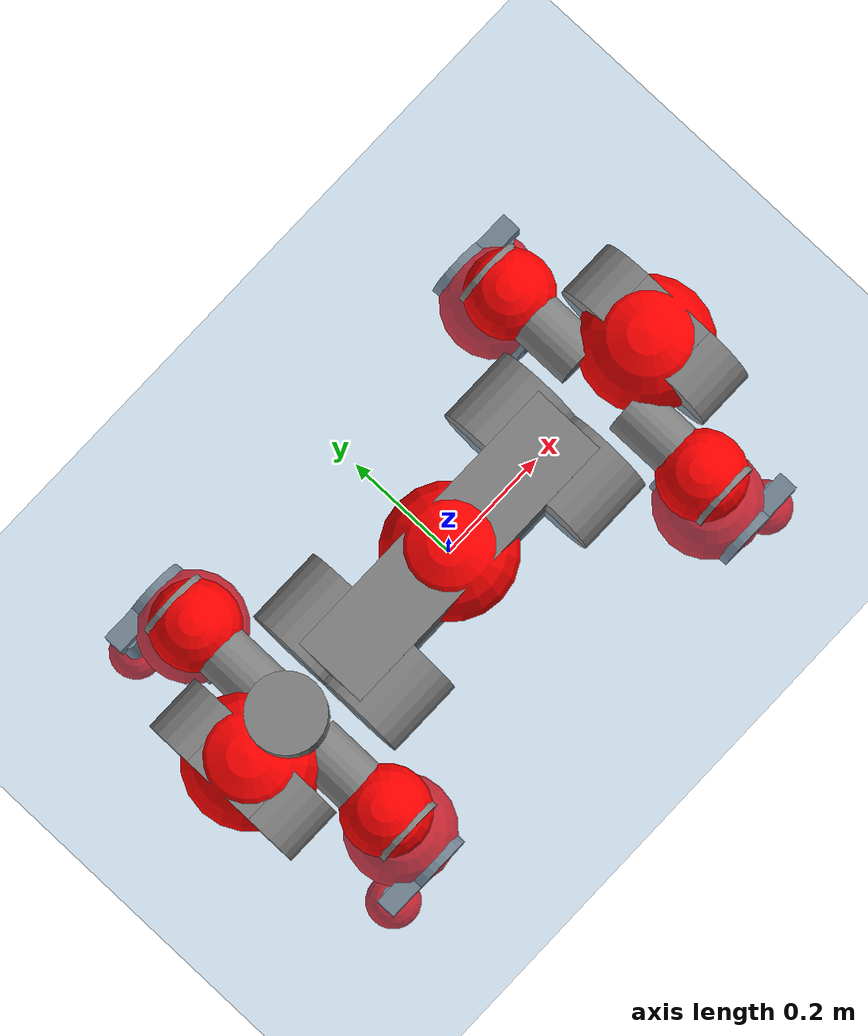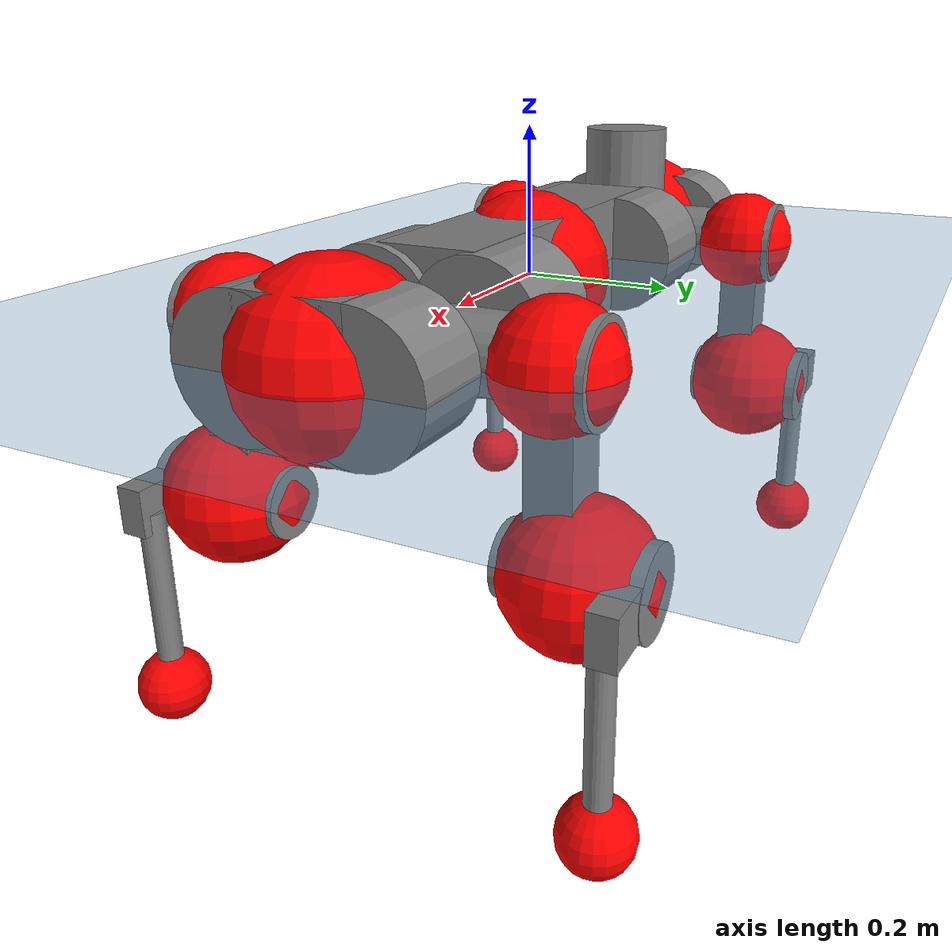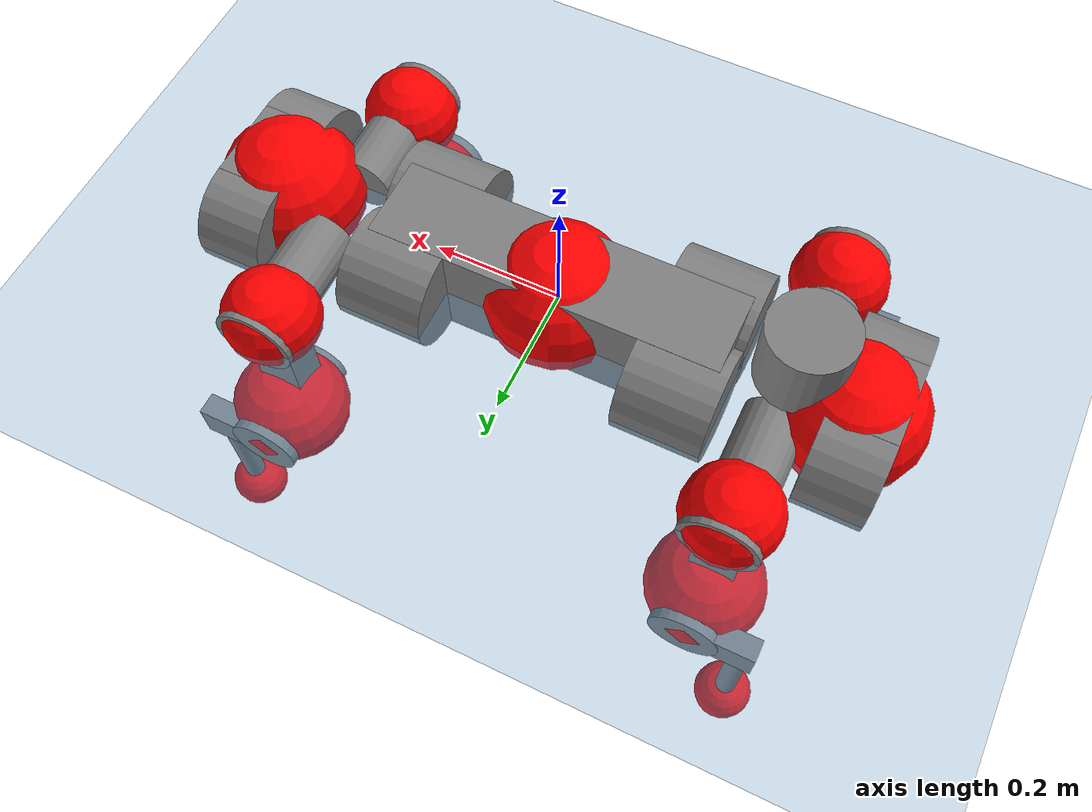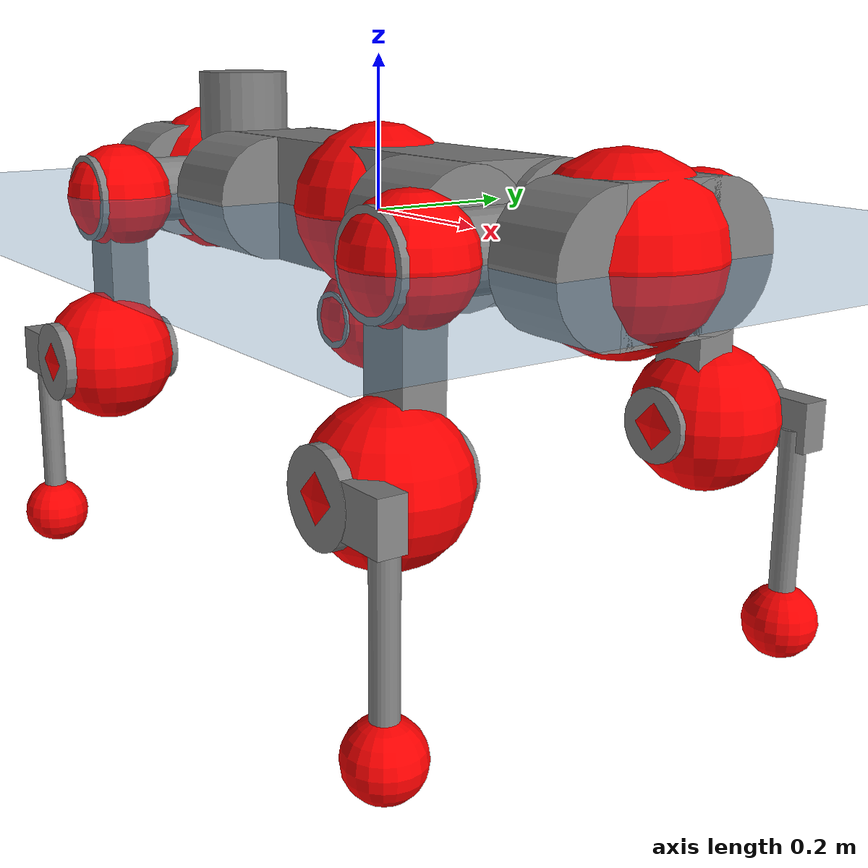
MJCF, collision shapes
<mujoco model="anymal_c">
  <compiler angle="radian" assetdir="assets" balanceinertia="true" inertiafromgeom="false"/>

  <option timestep="0.005" density="1.2" viscosity="2e-05"/>

  <size nkey="1"/>

  <visual>
    <quality shadowsize="8192"/>
    <map shadowclip="0.5"/>
  </visual>

  <default>
    <default class="/">
      <material specular="0" shininess="0.25"/>
      <geom contype="0" conaffinity="0" group="1" solref="-1000 -80"/>
      <site size="0.01 0.005 0.005" group="5"/>
      <general forcelimited="true" forcerange="-80 80" biastype="affine" gainprm="80" biasprm="0 -80 -2"/>
      <default class="anymal_c">
        <joint armature="0.01" damping="0.01" frictionloss="0.1"/>
        <default class="visual">
          <geom type="mesh" group="2"/>
          <default class="visual_zflip"/>
        </default>
        <default class="collision">
          <geom type="cylinder" group="3"/>
          <default class="foot">
            <geom size="0.03 0 0" type="sphere" condim="6" priority="1" friction="0.8 0.02 0.01" solimp="0.015 1 0.03"/>
          </default>
        </default>
      </default>
      <default class="reward_collision_sphere">
        <geom group="5" rgba="1 0 0 1"/>
      </default>
    </default>
  </default>

  <asset>
    <texture type="skybox" colorspace="auto" name="//unnamed_texture_0" builtin="gradient" rgb1="0.95 0.95 0.95" rgb2="0.95 0.95 0.95" width="100" height="600"/>
    <texture type="2d" colorspace="auto" name="texplane" builtin="checker" rgb1="0.345 0.575 0.748" rgb2="0.345 0.575 0.748" markrgb="1 1 1" width="512" height="512"/>
    <texture type="2d" colorspace="linear" name="base" file="base.png"/>
    <texture type="2d" colorspace="linear" name="top_shell" file="top_shell.png"/>
    <texture type="2d" colorspace="linear" name="bottom_shell" file="bottom_shell.png"/>
    <texture type="2d" colorspace="linear" name="remote" file="remote.png"/>
    <texture type="2d" colorspace="linear" name="hatch" file="hatch.png"/>
    <texture type="2d" colorspace="linear" name="handle" file="handle.png"/>
    <texture type="2d" colorspace="linear" name="face" file="face.png"/>
    <texture type="2d" colorspace="linear" name="battery" file="battery.png"/>
    <texture type="2d" colorspace="linear" name="lidar_cage" file="lidar_cage.png"/>
    <texture type="2d" colorspace="linear" name="depth_camera" file="depth_camera.png"/>
    <texture type="2d" colorspace="linear" name="wide_angle_camera" file="wide_angle_camera.png"/>
    <texture type="2d" colorspace="linear" name="lidar" file="lidar.png"/>
    <texture type="2d" colorspace="linear" name="drive" file="drive.png"/>
    <texture type="2d" colorspace="linear" name="hip_l" file="hip_l.png"/>
    <texture type="2d" colorspace="linear" name="shank_l" file="shank_l.png"/>
    <texture type="2d" colorspace="linear" name="foot" file="foot.png"/>
    <texture type="2d" colorspace="linear" name="thigh" file="thigh.png"/>
    <texture type="2d" colorspace="linear" name="shank_r" file="shank_r.png"/>
    <texture type="2d" colorspace="linear" name="hip_r" file="hip_r.png"/>
    <material name="MatPlane" class="/" texture="texplane" texuniform="true" texrepeat="2 2" specular="0.9" shininess="0.5"/>
    <material name="black_plastic" class="/" rgba="0.007 0.007 0.007 1"/>
    <material name="green" class="/" rgba="0.052 0.178 0.033 1"/>
    <material name="red" class="/" rgba="0.178 0.006 0.005 1"/>
    <material name="yellow" class="/" rgba="0.178 0.119 0.006 1"/>
    <material name="lwl" class="/" rgba="0.8 0.8 0.8 1"/>
    <material name="base" class="/" texture="base"/>
    <material name="top_shell" class="/" texture="top_shell"/>
    <material name="bottom_shell" class="/" texture="bottom_shell"/>
    <material name="hip_l" class="/" texture="hip_l"/>
    <material name="thigh" class="/" texture="thigh"/>
    <material name="shank_l" class="/" texture="shank_l"/>
    <material name="foot" class="/" texture="foot"/>
    <material name="hip_r" class="/" texture="hip_r"/>
    <material name="shank" class="/" texture="shank_r"/>
    <material name="hatch" class="/" texture="hatch"/>
    <material name="remote" class="/" texture="remote"/>
    <material name="handle" class="/" texture="handle"/>
    <material name="face" class="/" texture="face"/>
    <material name="depth_camera" class="/" texture="depth_camera"/>
    <material name="wide_angle_camera" class="/" texture="wide_angle_camera"/>
    <material name="battery" class="/" texture="battery"/>
    <material name="lidar_cage" class="/" texture="lidar_cage"/>
    <material name="lidar" class="/" texture="lidar"/>
    <material name="drive" class="/" texture="drive"/>
    <mesh name="base_0" class="/" file="base_0.obj"/>
    <mesh name="base_1" class="/" file="base_1.obj"/>
    <mesh name="base_2" class="/" file="base_2.obj"/>
    <mesh name="base_3" class="/" file="base_3.obj"/>
    <mesh name="base_4" class="/" file="base_4.obj"/>
    <mesh name="base_5" class="/" file="base_5.obj"/>
    <mesh name="top_shell" class="/" file="top_shell.obj"/>
    <mesh name="bottom_shell" class="/" file="bottom_shell.obj"/>
    <mesh name="remote" class="/" file="remote.obj"/>
    <mesh name="handle" class="/" file="handle.obj"/>
    <mesh name="face" class="/" file="face.obj"/>
    <mesh name="wide_angle_camera" class="/" file="wide_angle_camera.obj"/>
    <mesh name="depth_camera" class="/" file="depth_camera.obj"/>
    <mesh name="battery" class="/" file="battery.obj"/>
    <mesh name="lidar_cage" class="/" file="lidar_cage.obj"/>
    <mesh name="lidar" class="/" file="lidar.obj"/>
    <mesh name="drive" class="/" file="drive.obj"/>
    <mesh name="hip_l" class="/" file="hip_l.obj"/>
    <mesh name="thigh" class="/" file="thigh.obj"/>
    <mesh name="shank_l" class="/" file="shank_l.obj"/>
    <mesh name="foot" class="/" file="foot.obj"/>
    <mesh name="hip_r" class="/" file="hip_r.obj"/>
    <mesh name="hatch" class="/" file="hatch.obj"/>
    <mesh name="shank_r" class="/" file="shank_r.obj"/>
  </asset>

  <worldbody>
    <geom name="floor" class="/" size="100 100 0.125" type="plane" group="0" material="MatPlane"/>
    <light name="toplight_shadow" class="/" pos="0 0 5" dir="0.0990148 0.0990148 -0.990148" type="directional" ambient="0.04 0.04 0.04" diffuse="0.55 0.55 0.55" specular="0.12 0.12 0.12"/>
    <light name="toplight_fill" class="/" pos="0 0 5" dir="0.0990148 0.0990148 -0.990148" type="directional" castshadow="false" ambient="0.04 0.04 0.04" diffuse="0.3 0.3 0.3" specular="0.08 0.08 0.08"/>
    <body name="trunk" childclass="anymal_c" pos="0.00155146 -0.000798595 0.00312074" quat="0.999999 -0.000883217 0.000275533 -0.00063488">
      <inertial pos="0.0025689 -0.000825723 0.0342115" quat="0.504497 0.495128 0.49521 0.505072" mass="14.9844" diaginertia="0.612453 0.545522 0.0750737"/>
      <joint name="//unnamed_joint_0" type="free" armature="0" damping="0" frictionloss="0"/>
      <geom name="//unnamed_geom_1" class="visual" material="green" mesh="base_0"/>
      <geom name="//unnamed_geom_2" class="visual" material="yellow" mesh="base_1"/>
      <geom name="//unnamed_geom_3" class="visual" material="red" mesh="base_2"/>
      <geom name="//unnamed_geom_4" class="visual" material="black_plastic" mesh="base_3"/>
      <geom name="//unnamed_geom_5" class="visual" material="lwl" mesh="base_4"/>
      <geom name="//unnamed_geom_6" class="visual" material="base" mesh="base_5"/>
      <geom name="trunk_1" class="collision" size="0.271668 0.065575 0.0843107" type="box"/>
      <geom name="trunk_2" class="collision" size="0.0843107 0.067917" pos="0.21856 0.0692235 0" quat="0.707107 0 0.707107 0"/>
      <geom name="trunk_3" class="collision" size="0.0843107 0.067917" pos="-0.21856 0.0692235 0" quat="0.707107 0 0.707107 0"/>
      <geom name="trunk_4" class="collision" size="0.0843107 0.067917" pos="0.21856 -0.0692235 0" quat="0.707107 0 0.707107 0"/>
      <geom name="trunk_5" class="collision" size="0.0843107 0.067917" pos="-0.21856 -0.0692235 0" quat="0.707107 0 0.707107 0"/>
      <geom name="//unnamed_geom_12" class="visual" material="top_shell" mesh="top_shell"/>
      <geom name="//unnamed_geom_13" class="visual" material="bottom_shell" mesh="bottom_shell"/>
      <geom name="//unnamed_geom_14" class="visual" material="remote" mesh="remote"/>
      <geom name="//unnamed_geom_15" class="visual" material="handle" mesh="handle"/>
      <geom name="//unnamed_geom_16" class="visual" pos="0.41652 0 0" quat="1 0 0 0" material="face" mesh="face"/>
      <geom name="trunk_6" class="collision" size="0.0515232 0.065575 0.0843107" pos="0.471788 0 0" type="box"/>
      <geom name="//unnamed_geom_18" class="collision" size="0.0843107 0.0515232" pos="0.471788 0.0692235 0" quat="0.707107 0 0.707107 0"/>
      <geom name="//unnamed_geom_19" class="collision" size="0.0843107 0.0515232" pos="0.471788 -0.0692235 0" quat="0.707107 0 0.707107 0"/>
      <geom name="//unnamed_geom_20" class="visual" pos="0.463892 0 -0.022413" quat="0.965926 0 0.258819 0" material="depth_camera" mesh="depth_camera"/>
      <geom name="//unnamed_geom_21" class="visual" pos="0.5155 0 0.0122242" material="wide_angle_camera" mesh="wide_angle_camera"/>
      <geom name="//unnamed_geom_22" class="visual_zflip" pos="-0.41652 0 0" quat="0 0 0 1" material="face" mesh="face"/>
      <geom name="trunk_7" class="collision" size="0.0515232 0.065575 0.0843107" pos="-0.471788 0 0" quat="0 0 0 1" type="box"/>
      <geom name="//unnamed_geom_24" class="collision" size="0.0843107 0.0515232" pos="-0.471788 -0.0692235 0" quat="0 -0.707107 0 0.707107"/>
      <geom name="//unnamed_geom_25" class="collision" size="0.0843107 0.0515232" pos="-0.471788 0.0692235 0" quat="0 -0.707107 0 0.707107"/>
      <geom name="//unnamed_geom_26" class="visual" pos="-0.463892 0 -0.022413" quat="0 -0.258819 0 0.965926" material="depth_camera" mesh="depth_camera"/>
      <geom name="//unnamed_geom_27" class="visual_zflip" pos="-0.5155 0 0.0122242" quat="0 0 0 1" material="wide_angle_camera" mesh="wide_angle_camera"/>
      <geom name="//unnamed_geom_28" class="visual" material="battery" mesh="battery"/>
      <geom name="//unnamed_geom_29" class="visual" pos="0 0.0753945 0.0251526" quat="0.683013 -0.183013 0.183013 0.683013" material="depth_camera" mesh="depth_camera"/>
      <geom name="//unnamed_geom_30" class="visual" pos="0 -0.0753945 0.0251526" quat="0.683013 0.183013 0.183013 -0.683013" material="depth_camera" mesh="depth_camera"/>
      <geom name="//unnamed_geom_31" class="visual" pos="-0.365774 0 0.0600184" quat="1 0 0 0" material="lidar_cage" mesh="lidar_cage"/>
      <geom name="trunk_8" class="collision" size="0.065575 0.0562071" pos="-0.365774 0 0.109013"/>
      <geom name="//unnamed_geom_33" class="visual" pos="-0.365774 -6.27312e-06 0.116117" quat="0.707107 0 0 -0.707107" material="lidar" mesh="lidar"/>
      <geom name="//unnamed_geom_34" class="visual" pos="0.301362 0.102785 2.9727e-09" quat="0.258819 0.965926 0 0" material="drive" mesh="drive"/>
      <geom name="//unnamed_geom_35" class="visual" pos="0.301362 -0.102785 -2.9727e-09" quat="0.258819 -0.965926 0 0" material="drive" mesh="drive"/>
      <geom name="//unnamed_geom_36" class="visual" pos="-0.301362 0.102785 -2.9727e-09" quat="0 0 0.965926 -0.258819" material="drive" mesh="drive"/>
      <geom name="//unnamed_geom_37" class="visual" pos="-0.301362 -0.102785 2.9727e-09" quat="0 0 -0.965926 -0.258819" material="drive" mesh="drive"/>
      <geom name="//unnamed_geom_38" class="visual" pos="0.116565 0 0.0596101" quat="1 0 0 0" material="hatch" mesh="hatch"/>
      <geom name="//unnamed_geom_39" class="reward_collision_sphere" size="0.112414"/>
      <geom name="//unnamed_geom_40" class="reward_collision_sphere" size="0.112414" pos="0.452193 0 0"/>
      <geom name="//unnamed_geom_41" class="reward_collision_sphere" size="0.112414" pos="-0.452193 0 0"/>
      <site name="imu" pos="0.261329 0.0153607 0.0392583" size="0.00936786"/>
      <camera name="track" pos="0 -1.97781 0" quat="0.707107 0.707107 0 0" mode="trackcom"/>
      <camera name="ego_camera" pos="0.452193 0 -0.0326631" quat="-0.5 -0.5 0.5 0.5"/>
      <body name="LF_HIP" pos="0.301808 0.106258 0.00124853" quat="0.258794 0.965932 -0.000168324 -0.000192117">
        <inertial pos="0.0587503 -0.0158542 -0.00383394" quat="-0.133471 0.702938 -0.126713 0.687028" mass="2.23217" diaginertia="0.00589922 0.00441303 0.00117274"/>
        <joint name="LF_HAA" pos="0 0 0" axis="0.999977 0.00647109 0.00210222" range="-0.701085 0.524746" armature="0.00937546" damping="0.00620727" frictionloss="0.102012"/>
        <geom name="//unnamed_geom_42" class="visual" pos="0 0.00017487 -2.87223e-05" quat="0.258819 -0.965926 0 0" material="hip_l" mesh="hip_l"/>
        <geom name="//unnamed_geom_43" class="visual" pos="0.0601919 -0.0726639 -0.0406779" quat="0.183013 -0.683013 0.683013 0.183013" material="drive" mesh="drive"/>
        <geom name="//unnamed_geom_44" class="collision" size="0.0468393 0.065575" pos="0.0601919 -0.0118271 -0.00563847" quat="-0.353553 -0.612372 0.612372 -0.353553"/>
        <body name="LF_THIGH" pos="0.0608941 -0.071025 -0.0362609" quat="0.18317 -0.683134 0.68282 0.183123">
          <inertial pos="0.031327 -0.000889451 -0.200641" quat="0.991806 -0.0111016 -0.0843729 0.0952784" mass="2.64601" diaginertia="0.0324335 0.0287465 0.00155557"/>
          <joint name="LF_HFE" pos="0 0 0" axis="0.999998 -0.00152121 -0.000898561" range="-3.17582 3.14036" armature="0.00927159" damping="0.00984274" frictionloss="0.0931171"/>
          <geom name="//unnamed_geom_45" class="visual" pos="0.000317686 5.00599e-07 0" quat="0.707107 0 0 -0.707107" material="thigh" mesh="thigh"/>
          <geom name="//unnamed_geom_46" class="collision" size="0.0608911 0.0374714" pos="0.040195 0 0" quat="0.5 0.5 -0.5 -0.5"/>
          <geom name="//unnamed_geom_47" class="collision" size="0.0351295 0.0281036 0.132381" pos="0.0301462 0 -0.115394" quat="0.707107 0 0 -0.707107" type="box"/>
          <geom name="//unnamed_geom_48" class="visual" pos="0.100789 0 -0.232724" quat="1 0 0 0" material="drive" mesh="drive"/>
          <geom name="//unnamed_geom_49" class="collision" size="0.0468393 0.065575" pos="0.0304477 0 -0.232724" quat="0.707107 0 0.707107 0"/>
          <geom name="//unnamed_geom_50" class="reward_collision_sphere" size="0.0749429" pos="0.0251218 0 0"/>
          <body name="LF_SHANK" pos="0.104059 -0.00155254 -0.232733" quat="1 -5.51602e-05 1.55214e-06 7.05296e-05">
            <inertial pos="0.00964665 -0.0580345 -0.0659427" quat="0.992934 -0.115904 -0.00105489 -0.0254421" mass="0.48002" diaginertia="0.0107158 0.00888816 0.000412083"/>
            <joint name="LF_KFE" pos="0 0 0" axis="1 0.000329362 -0.000881474" range="-3.06155 3.16836" armature="0.00831403" damping="0" frictionloss="0.0774325"/>
            <geom name="//unnamed_geom_51" class="visual" pos="0.000103591 0.00055235 0" quat="0.707107 0 0 -0.707107" material="shank_l" mesh="shank_l"/>
            <geom name="LF_kfe_act" class="collision" size="0.0562071 0.0187357" pos="0.0200975 0 0" quat="0.5 0.5 -0.5 -0.5"/>
            <geom name="//unnamed_geom_53" class="collision" size="0.0538642 0.0316165 0.0177989" pos="0.0200975 -0.0568611 0" quat="0.5 0.5 -0.5 -0.5" type="box"/>
            <geom name="//unnamed_geom_54" class="visual" pos="0.0131136 -0.0867963 -0.275979" quat="0.382683 0 0 -0.92388" material="foot" mesh="foot"/>
            <geom name="LF_calf" class="collision" size="0.0163938 0.132323" pos="0.0131136 -0.0869743 -0.137989" quat="0.707107 0 0 -0.707107"/>
            <geom name="LF_foot" class="foot" size="0.0308024" pos="0.0131136 -0.0869743 -0.257606" quat="0.707107 0 0 -0.707107"/>
            <geom name="//unnamed_geom_57" class="reward_collision_sphere" size="0.0936786" pos="-0.0502437 0 0"/>
            <geom name="//unnamed_geom_58" class="reward_collision_sphere" size="0.0468393" pos="0.0131136 -0.0869743 -0.257606"/>
            <site name="LF_foot" class="foot" pos="0.0131136 -0.0869743 -0.257606" quat="0.707107 0 0 -0.707107" size="0.00936786"/>
          </body>
        </body>
      </body>
      <body name="RF_HIP" pos="0.300095 -0.102471 0.00229006" quat="0.257989 -0.966146 -0.00155025 -0.000691201">
        <inertial pos="0.0545635 0.0153336 -0.00568649" quat="0.131471 0.66887 0.122539 0.721327" mass="2.11867" diaginertia="0.00595979 0.00453774 0.00118026"/>
        <joint name="RF_HAA" pos="0 0 0" axis="0.999978 -0.00601083 0.00297319" stiffness="4.57838e-06" range="-0.430884 0.688239" armature="0.0104867" damping="0.00248451" frictionloss="0.0980866"/>
        <geom name="//unnamed_geom_59" class="visual" pos="0 -0.000174869 -2.87223e-05" quat="0.258819 0.965926 0 0" material="hip_r" mesh="hip_r"/>
        <geom name="//unnamed_geom_60" class="visual" pos="0.0601919 0.0726639 -0.0406779" quat="0.183013 0.683013 0.683013 -0.183013" material="drive" mesh="drive"/>
        <geom name="//unnamed_geom_61" class="collision" size="0.0468393 0.065575" pos="0.0601919 0.0118271 -0.00563847" quat="-0.353553 0.612372 0.612372 0.353553"/>
        <body name="RF_THIGH" pos="0.0597681 0.0703106 -0.0364654" quat="0.182469 0.683004 0.683047 -0.18346">
          <inertial pos="0.0289629 -0.0010049 -0.202627" quat="0.991562 -0.0139638 -0.0894282 0.092799" mass="2.50955" diaginertia="0.0307876 0.0283739 0.00155645"/>
          <joint name="RF_HFE" pos="0 0 0" axis="0.999969 -0.00630475 -0.00477009" range="-3.13574 3.10899" armature="0.00820728" damping="0.0295232" frictionloss="0.0955275"/>
          <geom name="//unnamed_geom_62" class="visual" pos="0.000317686 5.00599e-07 0" quat="0.707107 0 0 -0.707107" material="thigh" mesh="thigh"/>
          <geom name="//unnamed_geom_63" class="collision" size="0.0608911 0.0374714" pos="0.040195 0 0" quat="0.5 0.5 0.5 0.5"/>
          <geom name="//unnamed_geom_64" class="collision" size="0.0351295 0.0281036 0.132381" pos="0.0301462 0 -0.115394" quat="0.707107 0 0 0.707107" type="box"/>
          <geom name="//unnamed_geom_65" class="visual" pos="0.100789 0 -0.232724" quat="1 0 0 0" material="drive" mesh="drive"/>
          <geom name="//unnamed_geom_66" class="collision" size="0.0468393 0.065575" pos="0.0304477 0 -0.232724" quat="0.707107 0 0.707107 0"/>
          <geom name="//unnamed_geom_67" class="reward_collision_sphere" size="0.0749429" pos="0.0251218 0 0"/>
          <body name="RF_SHANK" pos="0.103145 0.00194152 -0.232038" quat="0.999999 0.00116832 -0.000165357 -0.000213934">
            <inertial pos="0.00328801 0.06256 -0.0661212" quat="0.99183 0.121135 -0.0146274 0.0372259" mass="0.48395" diaginertia="0.0106352 0.00880231 0.000411395"/>
            <joint name="RF_KFE" pos="0 0 0" axis="0.999894 -0.00825246 0.0119788" range="-3.12638 3.10497" armature="0.00981214" damping="0.00421763" frictionloss="0.0842594"/>
            <geom name="//unnamed_geom_68" class="visual" pos="0.00010359 -0.000552349 0" quat="0.707107 0 0 0.707107" material="shank" mesh="shank_r"/>
            <geom name="RF_kfe_act" class="collision" size="0.0562071 0.0187357" pos="0.0200975 0 0" quat="0.5 0.5 0.5 0.5"/>
            <geom name="//unnamed_geom_70" class="collision" size="0.0538642 0.0316165 0.0177989" pos="0.0200975 0.0568611 0" quat="0.5 0.5 0.5 0.5" type="box"/>
            <geom name="//unnamed_geom_71" class="visual" pos="0.0131136 0.0867963 -0.275979" quat="0.382683 0 0 0.92388" material="foot" mesh="foot"/>
            <geom name="RF_calf" class="collision" size="0.0163938 0.132323" pos="0.0131136 0.0869743 -0.137989" quat="0.707107 0 0 0.707107"/>
            <geom name="RF_foot" class="foot" size="0.0299411" pos="0.0131136 0.0869743 -0.257606" quat="0.707107 0 0 0.707107"/>
            <geom name="//unnamed_geom_74" class="reward_collision_sphere" size="0.0936786" pos="-0.0502437 0 0"/>
            <geom name="//unnamed_geom_75" class="reward_collision_sphere" size="0.0468393" pos="0.0131136 0.0869743 -0.257606"/>
            <site name="RF_foot" class="foot" pos="0.0131136 0.0869743 -0.257606" quat="0.707107 0 0 0.707107" size="0.00936786"/>
          </body>
        </body>
      </body>
      <body name="LH_HIP" pos="-0.299967 0.102417 0.000629869" quat="-0.00112048 0.000868884 0.966144 -0.257999">
        <inertial pos="0.0544366 0.0168703 -0.00360189" quat="0.1407 0.677233 0.117355 0.712591" mass="2.20853" diaginertia="0.005743 0.00470812 0.00117564"/>
        <joint name="LH_HAA" pos="0 0 0" axis="0.999981 0.00574488 -0.00210209" range="-0.464007 0.679532" armature="0.0088887" damping="0.00691642" frictionloss="0.0952695"/>
        <geom name="//unnamed_geom_76" class="visual" pos="0 -0.000174869 -2.87223e-05" quat="-0.258819 -0.965926 0 0" material="hip_r" mesh="hip_r"/>
        <geom name="//unnamed_geom_77" class="visual" pos="0.0601919 0.0726639 -0.0406779" quat="0.183013 0.683013 0.683013 -0.183013" material="drive" mesh="drive"/>
        <geom name="//unnamed_geom_78" class="collision" size="0.0468393 0.065575" pos="0.0601919 0.0118271 -0.00563847" quat="-0.353553 0.612372 0.612372 0.353553"/>
        <body name="LH_THIGH" pos="0.0588675 0.0727615 -0.0391258" quat="0.183098 0.682923 0.683081 -0.183008">
          <inertial pos="0.0271923 -0.000232808 -0.196896" quat="0.992762 -0.0056049 -0.0806644 0.0887975" mass="2.38952" diaginertia="0.0285239 0.0273794 0.00144963"/>
          <joint name="LH_HFE" pos="0 0 0" axis="0.999855 -0.00133873 -0.0169991" stiffness="0.00602305" range="-3.16041 3.13845" armature="0.00909536" damping="0.0270241" frictionloss="0.104038"/>
          <geom name="//unnamed_geom_79" class="visual" pos="0.000317686 5.00599e-07 0" quat="0.707107 0 0 -0.707107" material="thigh" mesh="thigh"/>
          <geom name="//unnamed_geom_80" class="collision" size="0.0608911 0.0374714" pos="0.040195 0 0" quat="0.5 0.5 -0.5 -0.5"/>
          <geom name="//unnamed_geom_81" class="collision" size="0.0351295 0.0281036 0.132381" pos="0.0301462 0 -0.115394" quat="0.707107 0 0 -0.707107" type="box"/>
          <geom name="//unnamed_geom_82" class="visual" pos="0.100789 0 -0.232724" quat="1 0 0 0" material="drive" mesh="drive"/>
          <geom name="//unnamed_geom_83" class="collision" size="0.0468393 0.065575" pos="0.0304477 0 -0.232724" quat="0.707107 0 0.707107 0"/>
          <geom name="//unnamed_geom_84" class="reward_collision_sphere" size="0.0749429" pos="0.0251218 0 0"/>
          <body name="LH_SHANK" pos="0.0995615 -0.00192865 -0.23134" quat="1 -0.000156819 -4.66349e-05 -4.38059e-07">
            <inertial pos="0.00833392 0.0610568 -0.0624487" quat="0.993336 0.11259 -0.00932603 0.0228051" mass="0.4819" diaginertia="0.0103705 0.00849225 0.000416245"/>
            <joint name="LH_KFE" pos="0 0 0" axis="1 0.000347067 0.000277402" range="-3.10889 3.2221" armature="0.00841166" damping="0.0248213" frictionloss="0.0955421"/>
            <geom name="//unnamed_geom_85" class="visual" pos="0.00010359 -0.000552349 0" quat="-0.707107 0 0 -0.707107" material="shank" mesh="shank_r"/>
            <geom name="LH_kfe_act" class="collision" size="0.0562071 0.0187357" pos="0.0200975 0 0" quat="0.5 0.5 -0.5 -0.5"/>
            <geom name="//unnamed_geom_87" class="collision" size="0.0538642 0.0316165 0.0177989" pos="0.0200975 0.0568611 0" quat="0.5 0.5 -0.5 -0.5" type="box"/>
            <geom name="//unnamed_geom_88" class="visual" pos="0.0131136 0.0867963 -0.275979" quat="-0.382683 0 0 -0.92388" material="foot" mesh="foot"/>
            <geom name="LH_calf" class="collision" size="0.0163938 0.132323" pos="0.0131136 0.0869743 -0.137989" quat="0.707107 0 0 -0.707107"/>
            <geom name="LH_foot" class="foot" size="0.0305455" pos="0.0131136 0.0869743 -0.257606" quat="0.707107 0 0 -0.707107"/>
            <geom name="//unnamed_geom_91" class="reward_collision_sphere" size="0.0936786" pos="-0.0502437 0 0"/>
            <geom name="//unnamed_geom_92" class="reward_collision_sphere" size="0.0468393" pos="0.0131136 0.0869743 -0.257606"/>
            <site name="LH_foot" class="foot" pos="0.0131136 0.0869743 -0.257606" quat="0.707107 0 0 -0.707107" size="0.00936786"/>
          </body>
        </body>
      </body>
      <body name="RH_HIP" pos="-0.305301 -0.10285 -0.00168328" quat="-0.000295077 -0.000322598 -0.965741 -0.259508">
        <inertial pos="0.0575191 -0.0164505 -0.00714928" quat="-0.137971 0.708624 -0.135742 0.67852" mass="2.31252" diaginertia="0.0055863 0.00443294 0.00117338"/>
        <joint name="RH_HAA" pos="0 0 0" axis="0.999793 -0.00574036 -0.0195275" range="-0.766623 0.485717" armature="0.00933118" damping="0.00774368" frictionloss="0.0754819"/>
        <geom name="//unnamed_geom_93" class="visual" pos="0 0.00017487 -2.87223e-05" quat="-0.258819 0.965926 0 0" material="hip_l" mesh="hip_l"/>
        <geom name="//unnamed_geom_94" class="visual" pos="0.0601919 -0.0726639 -0.0406779" quat="-0.183013 0.683013 -0.683013 -0.183013" material="drive" mesh="drive"/>
        <geom name="//unnamed_geom_95" class="collision" size="0.0468393 0.065575" pos="0.0601919 -0.0118271 -0.00563847" quat="0.353553 0.612372 -0.612372 0.353553"/>
        <body name="RH_THIGH" pos="0.0588781 -0.0715922 -0.0339975" quat="-0.182258 0.682636 -0.683575 -0.183073">
          <inertial pos="0.033543 -0.00183609 -0.199009" quat="0.993257 -0.00112715 -0.0802701 0.0836388" mass="2.55214" diaginertia="0.0295174 0.0276454 0.00151523"/>
          <joint name="RH_HFE" pos="0 0 0" axis="0.999961 -0.00853682 -0.00225904" range="-3.15842 3.14704" armature="0.00892087" damping="0" frictionloss="0.0814731"/>
          <geom name="//unnamed_geom_96" class="visual" pos="0.000317686 5.00599e-07 0" quat="0.707107 0 0 -0.707107" material="thigh" mesh="thigh"/>
          <geom name="//unnamed_geom_97" class="collision" size="0.0608911 0.0374714" pos="0.040195 0 0" quat="0.5 0.5 0.5 0.5"/>
          <geom name="//unnamed_geom_98" class="collision" size="0.0351295 0.0281036 0.132381" pos="0.0301462 0 -0.115394" quat="0.707107 0 0 0.707107" type="box"/>
          <geom name="//unnamed_geom_99" class="visual" pos="0.100789 0 -0.232724" quat="1 0 0 0" material="drive" mesh="drive"/>
          <geom name="//unnamed_geom_100" class="collision" size="0.0468393 0.065575" pos="0.0304477 0 -0.232724" quat="0.707107 0 0.707107 0"/>
          <geom name="//unnamed_geom_101" class="reward_collision_sphere" size="0.0749429" pos="0.0251218 0 0"/>
          <body name="RH_SHANK" pos="0.103733 0.000187117 -0.232286" quat="0.999998 -0.00166684 0.00108844 0.000464981">
            <inertial pos="0.00830046 -0.061021 -0.065747" quat="0.993276 -0.110969 0.00359 -0.0327928" mass="0.477215" diaginertia="0.0103121 0.00907254 0.00042458"/>
            <joint name="RH_KFE" pos="0 0 0" axis="0.999824 0.0161779 0.00948354" stiffness="0.00969393" range="-3.16187 3.08737" armature="0.00893618" damping="0.0144565" frictionloss="0.0813516"/>
            <geom name="//unnamed_geom_102" class="visual" pos="0.000103591 0.00055235 0" quat="0.707107 0 0 -0.707107" material="shank_l" mesh="shank_l"/>
            <geom name="RH_kfe_act" class="collision" size="0.0562071 0.0187357" pos="0.0200975 0 0" quat="0.5 0.5 0.5 0.5"/>
            <geom name="//unnamed_geom_104" class="collision" size="0.0538642 0.0316165 0.0177989" pos="0.0200975 -0.0568611 0" quat="0.5 0.5 0.5 0.5" type="box"/>
            <geom name="//unnamed_geom_105" class="visual" pos="0.0131136 -0.0867963 -0.275979" quat="0.382683 0 0 -0.92388" material="foot" mesh="foot"/>
            <geom name="RH_calf" class="collision" size="0.0163938 0.132323" pos="0.0131136 -0.0869743 -0.137989" quat="0.707107 0 0 0.707107"/>
            <geom name="RH_foot" class="foot" size="0.0219952" pos="0.0131136 -0.0869743 -0.257606" quat="0.707107 0 0 0.707107"/>
            <geom name="//unnamed_geom_108" class="reward_collision_sphere" size="0.0936786" pos="-0.0502437 0 0"/>
            <geom name="//unnamed_geom_109" class="reward_collision_sphere" size="0.0468393" pos="0.0131136 -0.0869743 -0.257606"/>
            <site name="RH_foot" class="foot" pos="0.0131136 -0.0869743 -0.257606" quat="0.707107 0 0 0.707107" size="0.00936786"/>
          </body>
        </body>
      </body>
    </body>
  </worldbody>

  <contact>
    <pair class="/" geom1="floor" geom2="LF_foot" name="//unnamed_contact_0"/>
    <pair class="/" geom1="floor" geom2="RF_foot" name="//unnamed_contact_1"/>
    <pair class="/" geom1="floor" geom2="LH_foot" name="//unnamed_contact_2"/>
    <pair class="/" geom1="floor" geom2="RH_foot" name="//unnamed_contact_3"/>
  </contact>

  <actuator>
    <general name="LF_HAA" class="/" joint="LF_HAA" forcerange="-78.2913 78.2913" gainprm="77.5239" biasprm="0 -77.5239 -2.03652"/>
    <general name="LF_HFE" class="/" joint="LF_HFE" forcerange="-82.2813 82.2813" gainprm="77.5239" biasprm="0 -77.5239 -2.03652"/>
    <general name="LF_KFE" class="/" joint="LF_KFE" forcerange="-79.2865 79.2865" gainprm="77.5239" biasprm="0 -77.5239 -2.03652"/>
    <general name="RF_HAA" class="/" joint="RF_HAA" forcerange="-70.3539 70.3539" gainprm="77.5239" biasprm="0 -77.5239 -2.03652"/>
    <general name="RF_HFE" class="/" joint="RF_HFE" forcerange="-81.0732 81.0732" gainprm="77.5239" biasprm="0 -77.5239 -2.03652"/>
    <general name="RF_KFE" class="/" joint="RF_KFE" forcerange="-78.0399 78.0399" gainprm="77.5239" biasprm="0 -77.5239 -2.03652"/>
    <general name="LH_HAA" class="/" joint="LH_HAA" forcerange="-77.7904 77.7904" gainprm="77.5239" biasprm="0 -77.5239 -2.03652"/>
    <general name="LH_HFE" class="/" joint="LH_HFE" forcerange="-83.4541 83.4541" gainprm="77.5239" biasprm="0 -77.5239 -2.03652"/>
    <general name="LH_KFE" class="/" joint="LH_KFE" forcerange="-69.9779 69.9779" gainprm="77.5239" biasprm="0 -77.5239 -2.03652"/>
    <general name="RH_HAA" class="/" joint="RH_HAA" forcerange="-75.6101 75.6101" gainprm="77.5239" biasprm="0 -77.5239 -2.03652"/>
    <general name="RH_HFE" class="/" joint="RH_HFE" forcerange="-68.4938 68.4938" gainprm="77.5239" biasprm="0 -77.5239 -2.03652"/>
    <general name="RH_KFE" class="/" joint="RH_KFE" forcerange="-78.8275 78.8275" gainprm="77.5239" biasprm="0 -77.5239 -2.03652"/>
  </actuator>

  <sensor>
    <gyro site="imu" name="imu_angular_velocity"/>
    <velocimeter site="imu" name="imu_linear_velocity"/>
    <framelinvel objtype="site" objname="LF_foot" name="LF_foot_global_linear_velocity"/>
    <framelinvel objtype="site" objname="RF_foot" name="RF_foot_global_linear_velocity"/>
    <framelinvel objtype="site" objname="LH_foot" name="LH_foot_global_linear_velocity"/>
    <framelinvel objtype="site" objname="RH_foot" name="RH_foot_global_linear_velocity"/>
  </sensor>

  <keyframe>
    <key name="home" qpos="0 0 0.55 1 0 0 0 0 0.4 -0.8 0 -0.4 0.8 0 -0.4 0.8 0 0.4 -0.8"/>
  </keyframe>
</mujoco>
